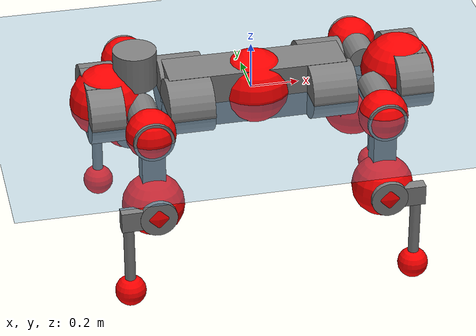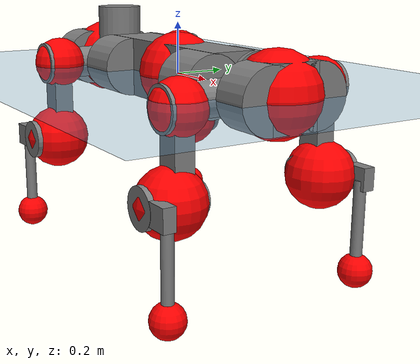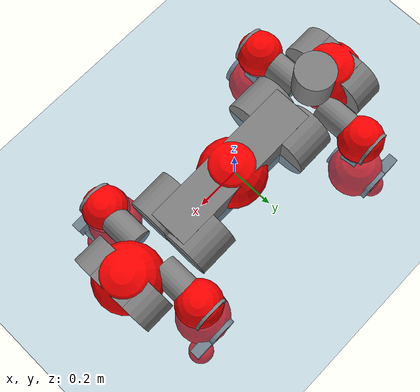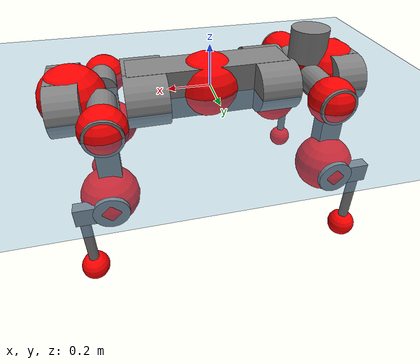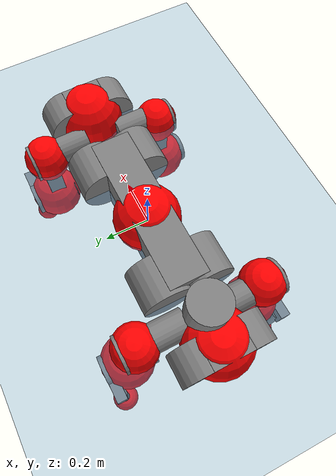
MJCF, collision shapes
<mujoco model="anymal_c">
  <compiler angle="radian" assetdir="assets" balanceinertia="true" inertiafromgeom="false"/>

  <option timestep="0.005" density="1.2" viscosity="2e-05"/>

  <size nkey="1"/>

  <visual>
    <quality shadowsize="8192"/>
    <map shadowclip="0.5"/>
  </visual>

  <default>
    <default class="/">
      <material specular="0" shininess="0.25"/>
      <geom contype="0" conaffinity="0" group="1" solref="-1000 -80"/>
      <site size="0.01 0.005 0.005" group="5"/>
      <general forcelimited="true" forcerange="-80 80" biastype="affine" gainprm="80" biasprm="0 -80 -2"/>
      <default class="anymal_c">
        <joint armature="0.01" damping="0.01" frictionloss="0.1"/>
        <default class="visual">
          <geom type="mesh" group="2"/>
          <default class="visual_zflip"/>
        </default>
        <default class="collision">
          <geom type="cylinder" group="3"/>
          <default class="foot">
            <geom size="0.03 0 0" type="sphere" condim="6" priority="1" friction="0.8 0.02 0.01" solimp="0.015 1 0.03"/>
          </default>
        </default>
      </default>
      <default class="reward_collision_sphere">
        <geom group="5" rgba="1 0 0 1"/>
      </default>
    </default>
  </default>

  <asset>
    <texture type="skybox" colorspace="auto" name="//unnamed_texture_0" builtin="gradient" rgb1="0.95 0.95 0.95" rgb2="0.95 0.95 0.95" width="100" height="600"/>
    <texture type="2d" colorspace="auto" name="texplane" builtin="checker" rgb1="0.345 0.575 0.748" rgb2="0.345 0.575 0.748" markrgb="1 1 1" width="512" height="512"/>
    <texture type="2d" colorspace="linear" name="base" file="base.png"/>
    <texture type="2d" colorspace="linear" name="top_shell" file="top_shell.png"/>
    <texture type="2d" colorspace="linear" name="bottom_shell" file="bottom_shell.png"/>
    <texture type="2d" colorspace="linear" name="remote" file="remote.png"/>
    <texture type="2d" colorspace="linear" name="hatch" file="hatch.png"/>
    <texture type="2d" colorspace="linear" name="handle" file="handle.png"/>
    <texture type="2d" colorspace="linear" name="face" file="face.png"/>
    <texture type="2d" colorspace="linear" name="battery" file="battery.png"/>
    <texture type="2d" colorspace="linear" name="lidar_cage" file="lidar_cage.png"/>
    <texture type="2d" colorspace="linear" name="depth_camera" file="depth_camera.png"/>
    <texture type="2d" colorspace="linear" name="wide_angle_camera" file="wide_angle_camera.png"/>
    <texture type="2d" colorspace="linear" name="lidar" file="lidar.png"/>
    <texture type="2d" colorspace="linear" name="drive" file="drive.png"/>
    <texture type="2d" colorspace="linear" name="hip_l" file="hip_l.png"/>
    <texture type="2d" colorspace="linear" name="shank_l" file="shank_l.png"/>
    <texture type="2d" colorspace="linear" name="foot" file="foot.png"/>
    <texture type="2d" colorspace="linear" name="thigh" file="thigh.png"/>
    <texture type="2d" colorspace="linear" name="shank_r" file="shank_r.png"/>
    <texture type="2d" colorspace="linear" name="hip_r" file="hip_r.png"/>
    <material name="MatPlane" class="/" texture="texplane" texuniform="true" texrepeat="2 2" specular="0.9" shininess="0.5"/>
    <material name="black_plastic" class="/" rgba="0.007 0.007 0.007 1"/>
    <material name="green" class="/" rgba="0.052 0.178 0.033 1"/>
    <material name="red" class="/" rgba="0.178 0.006 0.005 1"/>
    <material name="yellow" class="/" rgba="0.178 0.119 0.006 1"/>
    <material name="lwl" class="/" rgba="0.8 0.8 0.8 1"/>
    <material name="base" class="/" texture="base"/>
    <material name="top_shell" class="/" texture="top_shell"/>
    <material name="bottom_shell" class="/" texture="bottom_shell"/>
    <material name="hip_l" class="/" texture="hip_l"/>
    <material name="thigh" class="/" texture="thigh"/>
    <material name="shank_l" class="/" texture="shank_l"/>
    <material name="foot" class="/" texture="foot"/>
    <material name="hip_r" class="/" texture="hip_r"/>
    <material name="shank" class="/" texture="shank_r"/>
    <material name="hatch" class="/" texture="hatch"/>
    <material name="remote" class="/" texture="remote"/>
    <material name="handle" class="/" texture="handle"/>
    <material name="face" class="/" texture="face"/>
    <material name="depth_camera" class="/" texture="depth_camera"/>
    <material name="wide_angle_camera" class="/" texture="wide_angle_camera"/>
    <material name="battery" class="/" texture="battery"/>
    <material name="lidar_cage" class="/" texture="lidar_cage"/>
    <material name="lidar" class="/" texture="lidar"/>
    <material name="drive" class="/" texture="drive"/>
    <mesh name="base_0" class="/" file="base_0.obj"/>
    <mesh name="base_1" class="/" file="base_1.obj"/>
    <mesh name="base_2" class="/" file="base_2.obj"/>
    <mesh name="base_3" class="/" file="base_3.obj"/>
    <mesh name="base_4" class="/" file="base_4.obj"/>
    <mesh name="base_5" class="/" file="base_5.obj"/>
    <mesh name="top_shell" class="/" file="top_shell.obj"/>
    <mesh name="bottom_shell" class="/" file="bottom_shell.obj"/>
    <mesh name="remote" class="/" file="remote.obj"/>
    <mesh name="handle" class="/" file="handle.obj"/>
    <mesh name="face" class="/" file="face.obj"/>
    <mesh name="wide_angle_camera" class="/" file="wide_angle_camera.obj"/>
    <mesh name="depth_camera" class="/" file="depth_camera.obj"/>
    <mesh name="battery" class="/" file="battery.obj"/>
    <mesh name="lidar_cage" class="/" file="lidar_cage.obj"/>
    <mesh name="lidar" class="/" file="lidar.obj"/>
    <mesh name="drive" class="/" file="drive.obj"/>
    <mesh name="hip_l" class="/" file="hip_l.obj"/>
    <mesh name="thigh" class="/" file="thigh.obj"/>
    <mesh name="shank_l" class="/" file="shank_l.obj"/>
    <mesh name="foot" class="/" file="foot.obj"/>
    <mesh name="hip_r" class="/" file="hip_r.obj"/>
    <mesh name="hatch" class="/" file="hatch.obj"/>
    <mesh name="shank_r" class="/" file="shank_r.obj"/>
  </asset>

  <worldbody>
    <geom name="floor" class="/" size="100 100 0.125" type="plane" group="0" material="MatPlane"/>
    <light name="toplight_shadow" class="/" pos="0 0 5" dir="0.0990148 0.0990148 -0.990148" type="directional" ambient="0.04 0.04 0.04" diffuse="0.55 0.55 0.55" specular="0.12 0.12 0.12"/>
    <light name="toplight_fill" class="/" pos="0 0 5" dir="0.0990148 0.0990148 -0.990148" type="directional" castshadow="false" ambient="0.04 0.04 0.04" diffuse="0.3 0.3 0.3" specular="0.08 0.08 0.08"/>
    <body name="trunk" childclass="anymal_c" pos="0.0113598 -0.00353903 0.0087588" quat="0.999987 0.00121282 0.00204309 0.00458948">
      <inertial pos="0.0123724 -0.00925328 0.0539385" quat="0.523025 0.537774 0.469397 0.465736" mass="35.5248" diaginertia="2.19337 2.91517 0.265574"/>
      <joint name="//unnamed_joint_0" type="free" armature="0" damping="0" frictionloss="0"/>
      <geom name="//unnamed_geom_1" class="visual" material="green" mesh="base_0"/>
      <geom name="//unnamed_geom_2" class="visual" material="yellow" mesh="base_1"/>
      <geom name="//unnamed_geom_3" class="visual" material="red" mesh="base_2"/>
      <geom name="//unnamed_geom_4" class="visual" material="black_plastic" mesh="base_3"/>
      <geom name="//unnamed_geom_5" class="visual" material="lwl" mesh="base_4"/>
      <geom name="//unnamed_geom_6" class="visual" material="base" mesh="base_5"/>
      <geom name="trunk_1" class="collision" size="0.372753 0.089975 0.115682" type="box"/>
      <geom name="trunk_2" class="collision" size="0.115682 0.0931884" pos="0.297541 0.0960946 0" quat="0.707107 0 0.707107 0"/>
      <geom name="trunk_3" class="collision" size="0.115682 0.0931884" pos="-0.297541 0.0960946 0" quat="0.707107 0 0.707107 0"/>
      <geom name="trunk_4" class="collision" size="0.115682 0.0931884" pos="0.297541 -0.0960946 0" quat="0.707107 0 0.707107 0"/>
      <geom name="trunk_5" class="collision" size="0.115682 0.0931884" pos="-0.297541 -0.0960946 0" quat="0.707107 0 0.707107 0"/>
      <geom name="//unnamed_geom_12" class="visual" material="top_shell" mesh="top_shell"/>
      <geom name="//unnamed_geom_13" class="visual" material="bottom_shell" mesh="bottom_shell"/>
      <geom name="//unnamed_geom_14" class="visual" material="remote" mesh="remote"/>
      <geom name="//unnamed_geom_15" class="visual" material="handle" mesh="handle"/>
      <geom name="//unnamed_geom_16" class="visual" pos="0.567038 0 0" quat="1 0 0 0" material="face" mesh="face"/>
      <geom name="trunk_6" class="collision" size="0.0706946 0.089975 0.115682" pos="0.642278 0 0" type="box"/>
      <geom name="//unnamed_geom_18" class="collision" size="0.115682 0.0706946" pos="0.642278 0.0960946 0" quat="0.707107 0 0.707107 0"/>
      <geom name="//unnamed_geom_19" class="collision" size="0.115682 0.0706946" pos="0.642278 -0.0960946 0" quat="0.707107 0 0.707107 0"/>
      <geom name="//unnamed_geom_20" class="visual" pos="0.631529 0 -0.0306456" quat="0.965926 0 0.258819 0" material="depth_camera" mesh="depth_camera"/>
      <geom name="//unnamed_geom_21" class="visual" pos="0.701787 0 0.0166958" material="wide_angle_camera" mesh="wide_angle_camera"/>
      <geom name="//unnamed_geom_22" class="visual_zflip" pos="-0.567038 0 0" quat="0 0 0 1" material="face" mesh="face"/>
      <geom name="trunk_7" class="collision" size="0.0706946 0.089975 0.115682" pos="-0.642278 0 0" quat="0 0 0 1" type="box"/>
      <geom name="//unnamed_geom_24" class="collision" size="0.115682 0.0706946" pos="-0.642278 -0.0960946 0" quat="0 -0.707107 0 0.707107"/>
      <geom name="//unnamed_geom_25" class="collision" size="0.115682 0.0706946" pos="-0.642278 0.0960946 0" quat="0 -0.707107 0 0.707107"/>
      <geom name="//unnamed_geom_26" class="visual" pos="-0.631529 0 -0.0306456" quat="0 -0.258819 0 0.965926" material="depth_camera" mesh="depth_camera"/>
      <geom name="//unnamed_geom_27" class="visual_zflip" pos="-0.701787 0 0.0166958" quat="0 0 0 1" material="wide_angle_camera" mesh="wide_angle_camera"/>
      <geom name="//unnamed_geom_28" class="visual" material="battery" mesh="battery"/>
      <geom name="//unnamed_geom_29" class="visual" pos="0 0.105015 0.0343197" quat="0.683013 -0.183013 0.183013 0.683013" material="depth_camera" mesh="depth_camera"/>
      <geom name="//unnamed_geom_30" class="visual" pos="0 -0.105015 0.0343197" quat="0.683013 0.183013 0.183013 -0.683013" material="depth_camera" mesh="depth_camera"/>
      <geom name="//unnamed_geom_31" class="visual" pos="-0.497954 0 0.0819734" quat="1 0 0 0" material="lidar_cage" mesh="lidar_cage"/>
      <geom name="trunk_8" class="collision" size="0.089975 0.0771214" pos="-0.497954 0 0.14889"/>
      <geom name="//unnamed_geom_33" class="visual" pos="-0.497954 1.87616e-06 0.158593" quat="0.707107 0 0 -0.707107" material="lidar" mesh="lidar"/>
      <geom name="//unnamed_geom_34" class="visual" pos="0.410265 0.142678 4.44184e-09" quat="0.258819 0.965926 0 0" material="drive" mesh="drive"/>
      <geom name="//unnamed_geom_35" class="visual" pos="0.410265 -0.142678 -4.44184e-09" quat="0.258819 -0.965926 0 0" material="drive" mesh="drive"/>
      <geom name="//unnamed_geom_36" class="visual" pos="-0.410265 0.142678 -4.44184e-09" quat="0 0 0.965926 -0.258819" material="drive" mesh="drive"/>
      <geom name="//unnamed_geom_37" class="visual" pos="-0.410265 -0.142678 4.44184e-09" quat="0 0 -0.965926 -0.258819" material="drive" mesh="drive"/>
      <geom name="//unnamed_geom_38" class="visual" pos="0.158689 0 0.0814158" quat="1 0 0 0" material="hatch" mesh="hatch"/>
      <geom name="//unnamed_geom_39" class="reward_collision_sphere" size="0.154243"/>
      <geom name="//unnamed_geom_40" class="reward_collision_sphere" size="0.154243" pos="0.615602 0 0"/>
      <geom name="//unnamed_geom_41" class="reward_collision_sphere" size="0.154243" pos="-0.615602 0 0"/>
      <site name="imu" pos="0.293523 0.0945682 0.0859883" size="0.0128536"/>
      <camera name="track" pos="0 -2.74556 0" quat="0.707107 0.707107 0 0" mode="trackcom"/>
      <camera name="ego_camera" pos="0.615602 0 -0.0446114" quat="-0.5 -0.5 0.5 0.5"/>
      <body name="LF_HIP" pos="0.409146 0.143707 0.00660794" quat="0.265715 0.964044 -0.00285894 0.00252316">
        <inertial pos="0.0864423 -0.0228235 -0.0037044" quat="-0.175787 0.720058 -0.152696 0.653681" mass="4.79234" diaginertia="0.0229708 0.0195958 0.00411096"/>
        <joint name="LF_HAA" pos="0 0 0" axis="0.998917 0.0327543 -0.0330504" stiffness="0.00194366" range="-1.01026 0.468026" armature="0.00467039" damping="0.000415479" frictionloss="0.152318"/>
        <geom name="//unnamed_geom_42" class="visual" pos="0 0.000261293 -4.29172e-05" quat="0.258819 -0.965926 0 0" material="hip_l" mesh="hip_l"/>
        <geom name="//unnamed_geom_43" class="visual" pos="0.0819435 -0.0992634 -0.0554052" quat="0.183013 -0.683013 0.683013 0.183013" material="drive" mesh="drive"/>
        <geom name="//unnamed_geom_44" class="collision" size="0.0642678 0.089975" pos="0.0819435 -0.0164182 -0.00770104" quat="-0.353553 -0.612372 0.612372 -0.353553"/>
        <body name="LF_THIGH" pos="0.0819088 -0.0949737 -0.0418368" quat="0.183063 -0.682911 0.683059 0.183172">
          <inertial pos="0.0437334 0.0147111 -0.257348" quat="0.994696 0.0191022 -0.0661524 0.0764121" mass="6.70765" diaginertia="0.134667 0.159114 0.00667961"/>
          <joint name="LF_HFE" pos="0 0 0" axis="0.999784 0.00896285 -0.0187576" range="-3.13518 2.81995" armature="0.0190622" damping="0.0915444" frictionloss="0.12811"/>
          <geom name="//unnamed_geom_45" class="visual" pos="-9.50132e-05 -1.49719e-07 0" quat="0.707107 0 0 -0.707107" material="thigh" mesh="thigh"/>
          <geom name="//unnamed_geom_46" class="collision" size="0.0835482 0.0514143" pos="0.0547202 0 0" quat="0.5 0.5 -0.5 -0.5"/>
          <geom name="//unnamed_geom_47" class="collision" size="0.0482009 0.0385607 0.181639" pos="0.0410402 0 -0.157605" quat="0.707107 0 0 -0.707107" type="box"/>
          <geom name="//unnamed_geom_48" class="visual" pos="0.137211 0 -0.317856" quat="1 0 0 0" material="drive" mesh="drive"/>
          <geom name="//unnamed_geom_49" class="collision" size="0.0642678 0.089975" pos="0.0414506 0 -0.317856" quat="0.707107 0 0.707107 0"/>
          <geom name="//unnamed_geom_50" class="reward_collision_sphere" size="0.102829" pos="0.0342001 0 0"/>
          <body name="LF_SHANK" pos="0.120435 -0.0154426 -0.3289" quat="1 0.00010743 0.000308436 6.37948e-05">
            <inertial pos="0.0134405 -0.0747209 -0.100854" quat="0.992711 -0.1175 -0.00329223 -0.0265908" mass="1.01232" diaginertia="0.0415771 0.047386 0.00192842"/>
            <joint name="LF_KFE" pos="0 0 0" axis="0.999915 -0.00693748 -0.0110105" stiffness="0.0799826" range="-3.35547 3.41512" armature="0.0140974" damping="0.0267895" frictionloss="0.149148"/>
            <geom name="//unnamed_geom_51" class="visual" pos="-3.09817e-05 -0.000165196 0" quat="0.707107 0 0 -0.707107" material="shank_l" mesh="shank_l"/>
            <geom name="LF_kfe_act" class="collision" size="0.0771214 0.0257071" pos="0.0273601 0 0" quat="0.5 0.5 -0.5 -0.5"/>
            <geom name="//unnamed_geom_53" class="collision" size="0.0739067 0.0433808 0.0244218" pos="0.0273601 -0.0789335 0" quat="0.5 0.5 -0.5 -0.5" type="box"/>
            <geom name="//unnamed_geom_54" class="visual" pos="0.0178525 -0.120789 -0.376933" quat="0.382683 0 0 -0.92388" material="foot" mesh="foot"/>
            <geom name="LF_calf" class="collision" size="0.0224937 0.181559" pos="0.0178525 -0.120736 -0.188466" quat="0.707107 0 0 -0.707107"/>
            <geom name="LF_foot" class="foot" size="0.0605525" pos="0.0178525 -0.120736 -0.351839" quat="0.707107 0 0 -0.707107"/>
            <geom name="//unnamed_geom_57" class="reward_collision_sphere" size="0.128536" pos="-0.0684003 0 0"/>
            <geom name="//unnamed_geom_58" class="reward_collision_sphere" size="0.0642678" pos="0.0178525 -0.120736 -0.351839"/>
            <site name="LF_foot" class="foot" pos="0.0178525 -0.120736 -0.351839" quat="0.707107 0 0 -0.707107" size="0.0128536"/>
          </body>
        </body>
      </body>
      <body name="RF_HIP" pos="0.401799 -0.15165 -0.0150477" quat="0.25903 -0.965869 -4.06445e-05 -0.000509605">
        <inertial pos="0.0831893 0.0319106 -0.0102894" quat="0.105259 0.709745 0.175674 0.674033" mass="4.75263" diaginertia="0.0252899 0.0175878 0.00435612"/>
        <joint name="RF_HAA" pos="0 0 0" axis="0.999995 -0.00296262 -0.000521746" range="-0.723301 0.677666" armature="0.0135662" damping="0.00899047" frictionloss="0.0863634"/>
        <geom name="//unnamed_geom_59" class="visual" pos="0 -0.000261291 -4.29171e-05" quat="0.258819 0.965926 0 0" material="hip_r" mesh="hip_r"/>
        <geom name="//unnamed_geom_60" class="visual" pos="0.0819435 0.0992634 -0.0554052" quat="0.183013 0.683013 0.683013 -0.183013" material="drive" mesh="drive"/>
        <geom name="//unnamed_geom_61" class="collision" size="0.0642678 0.089975" pos="0.0819435 0.0164182 -0.00770104" quat="-0.353553 0.612372 0.612372 0.353553"/>
        <body name="RF_THIGH" pos="0.0736191 0.100714 -0.0342833" quat="0.181694 0.68486 0.682012 -0.181145">
          <inertial pos="0.0416431 0.000428129 -0.258673" quat="0.982865 -0.00776306 -0.164319 0.0831626" mass="4.88648" diaginertia="0.130906 0.118692 0.00588341"/>
          <joint name="RF_HFE" pos="0 0 0" axis="0.999928 -0.00408491 0.0112638" stiffness="0.0130128" range="-2.83925 2.89052" armature="0.0202707" damping="0.0175114" frictionloss="0.0972406"/>
          <geom name="//unnamed_geom_62" class="visual" pos="-9.50132e-05 -1.49719e-07 0" quat="0.707107 0 0 -0.707107" material="thigh" mesh="thigh"/>
          <geom name="//unnamed_geom_63" class="collision" size="0.0835482 0.0514143" pos="0.0547202 0 0" quat="0.5 0.5 0.5 0.5"/>
          <geom name="//unnamed_geom_64" class="collision" size="0.0482009 0.0385607 0.181639" pos="0.0410402 0 -0.157605" quat="0.707107 0 0 0.707107" type="box"/>
          <geom name="//unnamed_geom_65" class="visual" pos="0.137211 0 -0.317856" quat="1 0 0 0" material="drive" mesh="drive"/>
          <geom name="//unnamed_geom_66" class="collision" size="0.0642678 0.089975" pos="0.0414506 0 -0.317856" quat="0.707107 0 0.707107 0"/>
          <geom name="//unnamed_geom_67" class="reward_collision_sphere" size="0.102829" pos="0.0342001 0 0"/>
          <body name="RF_SHANK" pos="0.1341 -0.00238346 -0.318501" quat="1 -0.000317377 -0.000257328 -0.000107405">
            <inertial pos="0.00313996 0.0831039 -0.106928" quat="0.988383 0.146388 0.0330923 0.0239653" mass="1.74557" diaginertia="0.0534441 0.043387 0.00276067"/>
            <joint name="RF_KFE" pos="0 0 0" axis="0.99954 -0.012591 -0.0275907" range="-3.15301 3.32114" armature="0.00544593" damping="0.0120812" frictionloss="0.126084"/>
            <geom name="//unnamed_geom_68" class="visual" pos="-3.09816e-05 0.000165196 0" quat="0.707107 0 0 0.707107" material="shank" mesh="shank_r"/>
            <geom name="RF_kfe_act" class="collision" size="0.0771214 0.0257071" pos="0.0273601 0 0" quat="0.5 0.5 0.5 0.5"/>
            <geom name="//unnamed_geom_70" class="collision" size="0.0739067 0.0433808 0.0244218" pos="0.0273601 0.0789335 0" quat="0.5 0.5 0.5 0.5" type="box"/>
            <geom name="//unnamed_geom_71" class="visual" pos="0.0178525 0.120789 -0.376933" quat="0.382683 0 0 0.92388" material="foot" mesh="foot"/>
            <geom name="RF_calf" class="collision" size="0.0224937 0.181559" pos="0.0178525 0.120736 -0.188466" quat="0.707107 0 0 0.707107"/>
            <geom name="RF_foot" class="foot" size="0.0290534" pos="0.0178525 0.120736 -0.351839" quat="0.707107 0 0 0.707107"/>
            <geom name="//unnamed_geom_74" class="reward_collision_sphere" size="0.128536" pos="-0.0684003 0 0"/>
            <geom name="//unnamed_geom_75" class="reward_collision_sphere" size="0.0642678" pos="0.0178525 0.120736 -0.351839"/>
            <site name="RF_foot" class="foot" pos="0.0178525 0.120736 -0.351839" quat="0.707107 0 0 0.707107" size="0.0128536"/>
          </body>
        </body>
      </body>
      <body name="LH_HIP" pos="-0.406017 0.151193 0.0146454" quat="2.13574e-05 -0.000154167 0.965913 -0.258865">
        <inertial pos="0.0773467 0.0232948 0.0051511" quat="0.119343 0.684179 0.127151 0.708159" mass="5.0291" diaginertia="0.0242207 0.0282949 0.00572849"/>
        <joint name="LH_HAA" pos="0 0 0" axis="0.999982 0.00570905 -0.00166064" range="-0.814869 0.434118" armature="0.0120513" damping="0.0577622" frictionloss="0.0368204"/>
        <geom name="//unnamed_geom_76" class="visual" pos="0 -0.000261291 -4.29171e-05" quat="-0.258819 -0.965926 0 0" material="hip_r" mesh="hip_r"/>
        <geom name="//unnamed_geom_77" class="visual" pos="0.0819435 0.0992634 -0.0554052" quat="0.183013 0.683013 0.683013 -0.183013" material="drive" mesh="drive"/>
        <geom name="//unnamed_geom_78" class="collision" size="0.0642678 0.089975" pos="0.0819435 0.0164182 -0.00770104" quat="-0.353553 0.612372 0.612372 0.353553"/>
        <body name="LH_THIGH" pos="0.0798999 0.104933 -0.0500968" quat="0.183049 0.683186 0.682855 -0.18292">
          <inertial pos="0.0561096 -0.0038732 -0.25746" quat="0.993179 0.0609909 -0.0568416 0.0815133" mass="6.20842" diaginertia="0.155767 0.130026 0.0077125"/>
          <joint name="LH_HFE" pos="0 0 0" axis="0.997584 -0.0660514 0.0215481" stiffness="0.0319513" range="-2.8559 3.22789" armature="0.00822811" damping="0" frictionloss="0.132484"/>
          <geom name="//unnamed_geom_79" class="visual" pos="-9.50132e-05 -1.49719e-07 0" quat="0.707107 0 0 -0.707107" material="thigh" mesh="thigh"/>
          <geom name="//unnamed_geom_80" class="collision" size="0.0835482 0.0514143" pos="0.0547202 0 0" quat="0.5 0.5 -0.5 -0.5"/>
          <geom name="//unnamed_geom_81" class="collision" size="0.0482009 0.0385607 0.181639" pos="0.0410402 0 -0.157605" quat="0.707107 0 0 -0.707107" type="box"/>
          <geom name="//unnamed_geom_82" class="visual" pos="0.137211 0 -0.317856" quat="1 0 0 0" material="drive" mesh="drive"/>
          <geom name="//unnamed_geom_83" class="collision" size="0.0642678 0.089975" pos="0.0414506 0 -0.317856" quat="0.707107 0 0.707107 0"/>
          <geom name="//unnamed_geom_84" class="reward_collision_sphere" size="0.102829" pos="0.0342001 0 0"/>
          <body name="LH_SHANK" pos="0.147181 -0.00778811 -0.306009" quat="1 0.000297082 -0.000358763 0.000681325">
            <inertial pos="-0.00203199 0.0940274 -0.100678" quat="0.987107 0.15785 0.0216681 -0.015258" mass="1.43782" diaginertia="0.0485135 0.0409755 0.00209794"/>
            <joint name="LH_KFE" pos="0 0 0" axis="0.998999 -0.001018 0.0447143" stiffness="0.08345" range="-3.27154 3.13752" armature="0.00993979" damping="0" frictionloss="0.0660874"/>
            <geom name="//unnamed_geom_85" class="visual" pos="-3.09816e-05 0.000165196 0" quat="-0.707107 0 0 -0.707107" material="shank" mesh="shank_r"/>
            <geom name="LH_kfe_act" class="collision" size="0.0771214 0.0257071" pos="0.0273601 0 0" quat="0.5 0.5 -0.5 -0.5"/>
            <geom name="//unnamed_geom_87" class="collision" size="0.0739067 0.0433808 0.0244218" pos="0.0273601 0.0789335 0" quat="0.5 0.5 -0.5 -0.5" type="box"/>
            <geom name="//unnamed_geom_88" class="visual" pos="0.0178525 0.120789 -0.376933" quat="-0.382683 0 0 -0.92388" material="foot" mesh="foot"/>
            <geom name="LH_calf" class="collision" size="0.0224937 0.181559" pos="0.0178525 0.120736 -0.188466" quat="0.707107 0 0 -0.707107"/>
            <geom name="LH_foot" class="foot" size="0.0282524" pos="0.0178525 0.120736 -0.351839" quat="0.707107 0 0 -0.707107"/>
            <geom name="//unnamed_geom_91" class="reward_collision_sphere" size="0.128536" pos="-0.0684003 0 0"/>
            <geom name="//unnamed_geom_92" class="reward_collision_sphere" size="0.0642678" pos="0.0178525 0.120736 -0.351839"/>
            <site name="LH_foot" class="foot" pos="0.0178525 0.120736 -0.351839" quat="0.707107 0 0 -0.707107" size="0.0128536"/>
          </body>
        </body>
      </body>
      <body name="RH_HIP" pos="-0.411643 -0.136744 -0.00152629" quat="-0.00288808 0.00179818 -0.966178 -0.257854">
        <inertial pos="0.0766302 -0.0350639 0.00207618" quat="-0.12936 0.71121 -0.135208 0.677618" mass="6.38341" diaginertia="0.0353513 0.0303485 0.00688773"/>
        <joint name="RH_HAA" pos="0 0 0" axis="0.999499 -0.0254174 0.0188593" stiffness="0.00809486" range="-0.861183 0.744131" armature="0.0183802" damping="0.0729227" frictionloss="0.084441"/>
        <geom name="//unnamed_geom_93" class="visual" pos="0 0.000261293 -4.29172e-05" quat="-0.258819 0.965926 0 0" material="hip_l" mesh="hip_l"/>
        <geom name="//unnamed_geom_94" class="visual" pos="0.0819435 -0.0992634 -0.0554052" quat="-0.183013 0.683013 -0.683013 -0.183013" material="drive" mesh="drive"/>
        <geom name="//unnamed_geom_95" class="collision" size="0.0642678 0.089975" pos="0.0819435 -0.0164182 -0.00770104" quat="0.353553 0.612372 -0.612372 0.353553"/>
        <body name="RH_THIGH" pos="0.0775679 -0.102428 -0.0617241" quat="-0.182988 0.682784 -0.683261 -0.182964">
          <inertial pos="0.0523181 -0.0113547 -0.274844" quat="0.993418 -0.00480954 -0.0814078 0.0804386" mass="8.78882" diaginertia="0.151207 0.17494 0.0070526"/>
          <joint name="RH_HFE" pos="0 0 0" axis="0.999394 -0.00268112 -0.034719" range="-2.84001 2.8567" armature="0.0115803" damping="0.000190783" frictionloss="0.212121"/>
          <geom name="//unnamed_geom_96" class="visual" pos="-9.50132e-05 -1.49719e-07 0" quat="0.707107 0 0 -0.707107" material="thigh" mesh="thigh"/>
          <geom name="//unnamed_geom_97" class="collision" size="0.0835482 0.0514143" pos="0.0547202 0 0" quat="0.5 0.5 0.5 0.5"/>
          <geom name="//unnamed_geom_98" class="collision" size="0.0482009 0.0385607 0.181639" pos="0.0410402 0 -0.157605" quat="0.707107 0 0 0.707107" type="box"/>
          <geom name="//unnamed_geom_99" class="visual" pos="0.137211 0 -0.317856" quat="1 0 0 0" material="drive" mesh="drive"/>
          <geom name="//unnamed_geom_100" class="collision" size="0.0642678 0.089975" pos="0.0414506 0 -0.317856" quat="0.707107 0 0.707107 0"/>
          <geom name="//unnamed_geom_101" class="reward_collision_sphere" size="0.102829" pos="0.0342001 0 0"/>
          <body name="RH_SHANK" pos="0.121925 -0.00148997 -0.318433" quat="0.999998 0.000649018 0.00157063 0.000977684">
            <inertial pos="0.000781629 -0.084 -0.0906053" quat="0.992767 -0.113012 -0.0145543 -0.0378257" mass="1.6288" diaginertia="0.0585121 0.0526793 0.0021371"/>
            <joint name="RH_KFE" pos="0 0 0" axis="0.998925 0.0444795 -0.0130689" stiffness="0.0466234" range="-3.09324 2.94702" armature="0.0177585" damping="0.0806233" frictionloss="0.132457"/>
            <geom name="//unnamed_geom_102" class="visual" pos="-3.09817e-05 -0.000165196 0" quat="0.707107 0 0 -0.707107" material="shank_l" mesh="shank_l"/>
            <geom name="RH_kfe_act" class="collision" size="0.0771214 0.0257071" pos="0.0273601 0 0" quat="0.5 0.5 0.5 0.5"/>
            <geom name="//unnamed_geom_104" class="collision" size="0.0739067 0.0433808 0.0244218" pos="0.0273601 -0.0789335 0" quat="0.5 0.5 0.5 0.5" type="box"/>
            <geom name="//unnamed_geom_105" class="visual" pos="0.0178525 -0.120789 -0.376933" quat="0.382683 0 0 -0.92388" material="foot" mesh="foot"/>
            <geom name="RH_calf" class="collision" size="0.0224937 0.181559" pos="0.0178525 -0.120736 -0.188466" quat="0.707107 0 0 0.707107"/>
            <geom name="RH_foot" class="foot" size="0.0451913" pos="0.0178525 -0.120736 -0.351839" quat="0.707107 0 0 0.707107"/>
            <geom name="//unnamed_geom_108" class="reward_collision_sphere" size="0.128536" pos="-0.0684003 0 0"/>
            <geom name="//unnamed_geom_109" class="reward_collision_sphere" size="0.0642678" pos="0.0178525 -0.120736 -0.351839"/>
            <site name="RH_foot" class="foot" pos="0.0178525 -0.120736 -0.351839" quat="0.707107 0 0 0.707107" size="0.0128536"/>
          </body>
        </body>
      </body>
    </body>
  </worldbody>

  <contact>
    <pair class="/" geom1="floor" geom2="LF_foot" name="//unnamed_contact_0"/>
    <pair class="/" geom1="floor" geom2="RF_foot" name="//unnamed_contact_1"/>
    <pair class="/" geom1="floor" geom2="LH_foot" name="//unnamed_contact_2"/>
    <pair class="/" geom1="floor" geom2="RH_foot" name="//unnamed_contact_3"/>
  </contact>

  <actuator>
    <general name="LF_HAA" class="/" joint="LF_HAA" forcerange="-87.1523 87.1523" gainprm="119.523" biasprm="0 -119.523 -1.67726"/>
    <general name="LF_HFE" class="/" joint="LF_HFE" forcerange="-51.5589 51.5589" gainprm="119.523" biasprm="0 -119.523 -1.67726"/>
    <general name="LF_KFE" class="/" joint="LF_KFE" forcerange="-158.445 158.445" gainprm="119.523" biasprm="0 -119.523 -1.67726"/>
    <general name="RF_HAA" class="/" joint="RF_HAA" forcerange="-93.4673 93.4673" gainprm="119.523" biasprm="0 -119.523 -1.67726"/>
    <general name="RF_HFE" class="/" joint="RF_HFE" forcerange="-64.3686 64.3686" gainprm="119.523" biasprm="0 -119.523 -1.67726"/>
    <general name="RF_KFE" class="/" joint="RF_KFE" forcerange="-37.2551 37.2551" gainprm="119.523" biasprm="0 -119.523 -1.67726"/>
    <general name="LH_HAA" class="/" joint="LH_HAA" forcerange="-46.5708 46.5708" gainprm="119.523" biasprm="0 -119.523 -1.67726"/>
    <general name="LH_HFE" class="/" joint="LH_HFE" forcerange="-70.3439 70.3439" gainprm="119.523" biasprm="0 -119.523 -1.67726"/>
    <general name="LH_KFE" class="/" joint="LH_KFE" forcerange="-101.57 101.57" gainprm="119.523" biasprm="0 -119.523 -1.67726"/>
    <general name="RH_HAA" class="/" joint="RH_HAA" forcerange="-107.655 107.655" gainprm="119.523" biasprm="0 -119.523 -1.67726"/>
    <general name="RH_HFE" class="/" joint="RH_HFE" forcerange="-165.486 165.486" gainprm="119.523" biasprm="0 -119.523 -1.67726"/>
    <general name="RH_KFE" class="/" joint="RH_KFE" forcerange="-151.524 151.524" gainprm="119.523" biasprm="0 -119.523 -1.67726"/>
  </actuator>

  <sensor>
    <gyro site="imu" name="imu_angular_velocity"/>
    <velocimeter site="imu" name="imu_linear_velocity"/>
    <framelinvel objtype="site" objname="LF_foot" name="LF_foot_global_linear_velocity"/>
    <framelinvel objtype="site" objname="RF_foot" name="RF_foot_global_linear_velocity"/>
    <framelinvel objtype="site" objname="LH_foot" name="LH_foot_global_linear_velocity"/>
    <framelinvel objtype="site" objname="RH_foot" name="RH_foot_global_linear_velocity"/>
  </sensor>

  <keyframe>
    <key name="home" qpos="0 0 0.55 1 0 0 0 0 0.4 -0.8 0 -0.4 0.8 0 -0.4 0.8 0 0.4 -0.8"/>
  </keyframe>
</mujoco>
